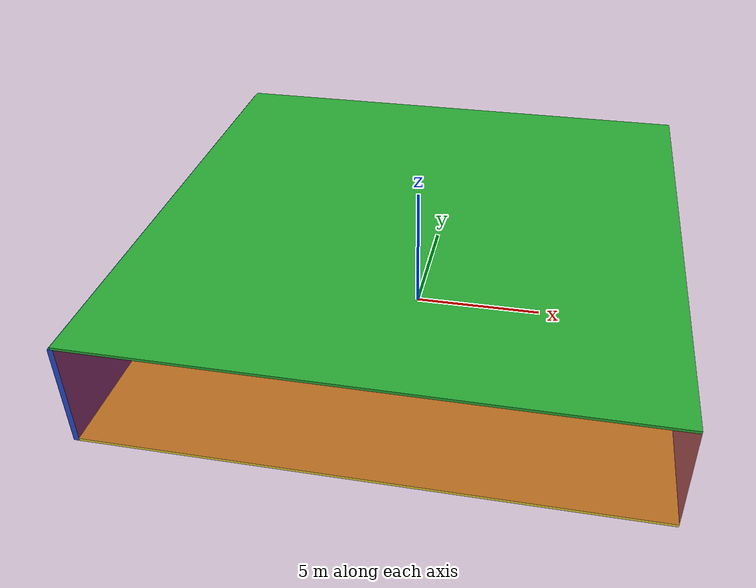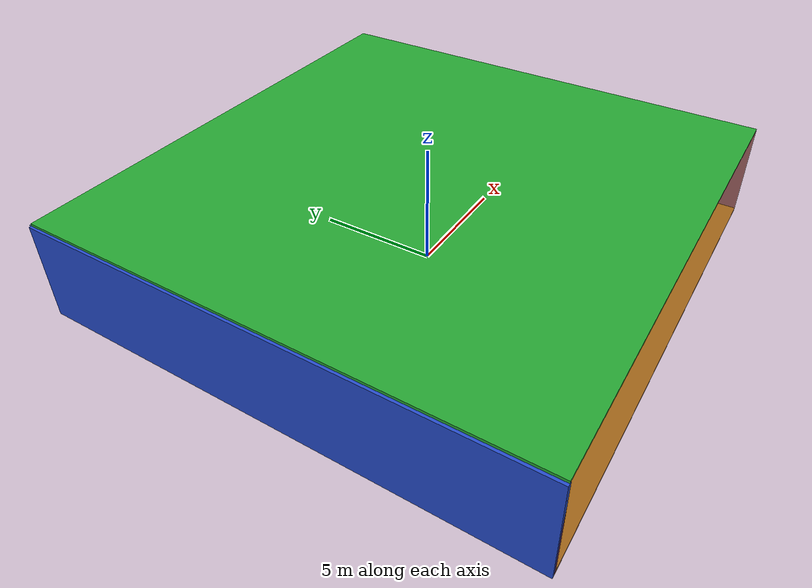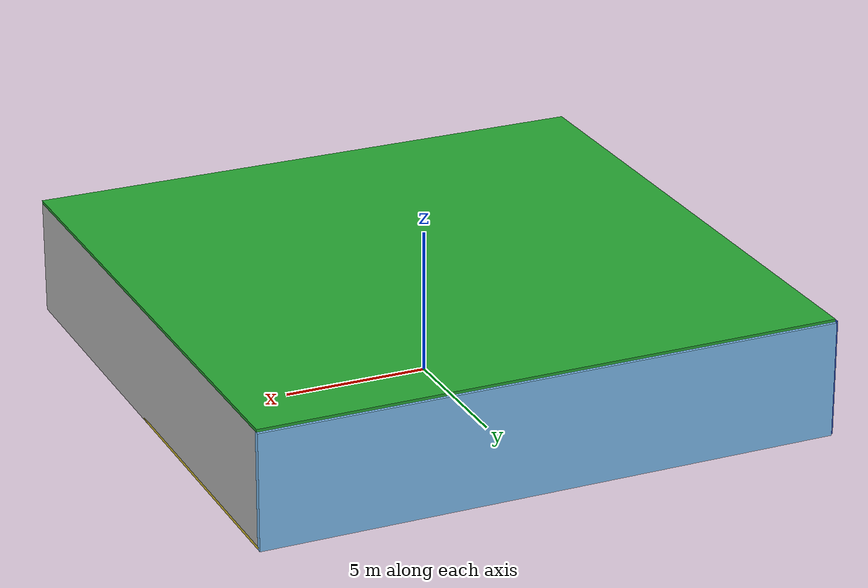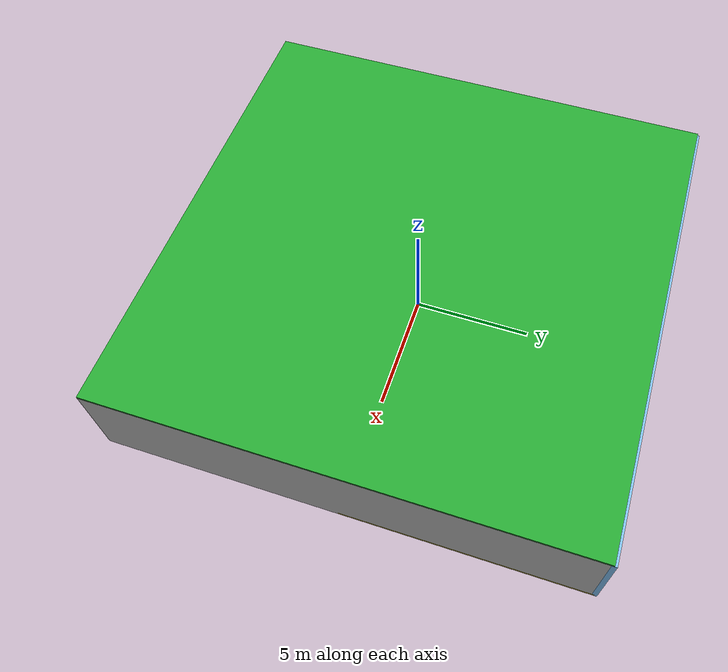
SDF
<sdf version="1.4">
 <world name="default">
  <physics type="ode">
   <max_step_size>0.001</max_step_size>
   <real_time_factor>1</real_time_factor>
   <real_time_update_rate>1000</real_time_update_rate>
   <gravity>0 0 -9.8</gravity>
  </physics>
  <scene><ambient>0.4 0.4 0.4 1</ambient><background>0.7 0.7 0.7 1</background><shadows>1</shadows></scene>
  <model name="Surrounding">
   <static>1</static>
   <link name="Ceiling">
    <collision name="Ceiling_Collision"><geometry><box><size>20 20 0.1</size></box></geometry></collision>
    <visual name="Ceiling_Visual">
     <geometry><box><size>20 20 0.1</size></box></geometry>
     <material>
      <script><uri>file://media/materials/scripts/gazebo.material</uri><name>Gazebo/GreenGlow</name></script>
     </material>
    </visual>
    <pose>0 0 4.05 0 0 0</pose>
   </link>
   <link name="Wall_South">
    <collision name="Wall_South_Collision">
     <geometry><box><size>20 0 4</size></box></geometry>
     <pose>0 0 2 0 -0 0</pose>
    </collision>
    <visual name="Wall_South_Visual">
     <pose>0 0 2 0 -0 0</pose>
     <geometry><box><size>20 0 4</size></box></geometry>
     <material>
      <script><uri>file://media/materials/scripts/gazebo.material</uri><name>Gazebo/RedTransparent</name></script>
     </material>
    </visual>
    <velocity_decay><linear>0</linear><angular>0</angular></velocity_decay>
    <pose>0 -10 0 0 -0 0</pose>
   </link>
   <link name="Wall_East">
    <collision name="Wall_21_Collision">
     <geometry><box><size>20 0 4</size></box></geometry>
     <pose>0 0 2 0 -0 0</pose>
    </collision>
    <visual name="Wall_21_Visual">
     <pose>0 0 2 0 -0 0</pose>
     <geometry><box><size>20 0 4</size></box></geometry>
     <material>
      <script><uri>file://media/materials/scripts/gazebo.material</uri><name>Gazebo/LightOff</name></script>
     </material>
    </visual>
    <velocity_decay><linear>0</linear><angular>0</angular></velocity_decay>
    <pose>10 0 0 0 -0 1.5708</pose>
   </link>
   <link name="Wall_North">
    <collision name="Wall_22_Collision">
     <geometry><box><size>20 0.2 4</size></box></geometry>
     <pose>0 0 2 0 -0 0</pose>
    </collision>
    <visual name="Wall_22_Visual">
     <pose>0 0 2 0 -0 0</pose>
     <geometry><box><size>20 0.2 4</size></box></geometry>
     <material>
      <script><uri>file://media/materials/scripts/gazebo.material</uri><name>Gazebo/SkyBlue</name></script>
     </material>
    </visual>
    <velocity_decay><linear>0</linear><angular>0</angular></velocity_decay>
    <pose>0 10 0 0 -0 0</pose>
   </link>
   <link name="Wall_West">
    <collision name="Wall_23_Collision">
     <geometry><box><size>20 0.2 4</size></box></geometry>
     <pose>0 0 2 0 -0 0</pose>
    </collision>
    <visual name="Wall_23_Visual">
     <pose>0 0 2 0 -0 0</pose>
     <geometry><box><size>20 0.2 4</size></box></geometry>
     <material>
      <script><uri>file://media/materials/scripts/gazebo.material</uri><name>Gazebo/Blue</name></script>
     </material>
    </visual>
    <velocity_decay><linear>0</linear><angular>0</angular></velocity_decay>
    <pose>-10 0 0 0 0 -1.5708</pose>
   </link>
   <link name="Ground_link">
    <collision name="collision">
     <pose>0 0 .05 0 -0 0</pose>
     <geometry><box><size>20 20 0.1</size></box></geometry>
    </collision>
    <visual name="visual">
     <pose>0 0 .05 0 -0 0</pose>
     <geometry><box><size>20 20 0.1</size></box></geometry>
     <material>
      <script><uri>file://media/materials/scripts/gazebo.material</uri><name>Gazebo/ZincYellow</name></script>
     </material>
    </visual>
   </link>
   <static>1</static>
  </model>
  <spherical_coordinates>
   <surface_model>EARTH_WGS84</surface_model>
   <latitude_deg>0</latitude_deg>
   <longitude_deg>0</longitude_deg>
   <elevation>0</elevation>
   <heading_deg>0</heading_deg>
  </spherical_coordinates>
  <light name="lightball_0" type="diffuse">
   <diffuse>0.8 0.8 0.8 1</diffuse>
   <specular>0.2 0.2 0.2 1</specular>
   <attenuation>
    <range>100</range>
    <constant>0.7</constant>
    <linear>0.01</linear>
    <quadratic>0.001</quadratic>
   </attenuation>
   <direction>-0.5 0.1 -0.9</direction>
   <pose>5.31087219496 -0.990916376692 1.9544703915 0 0 0</pose>
  </light>
  <light name="lightball_1" type="diffuse">
   <diffuse>0.8 0.8 0.8 1</diffuse>
   <specular>0.2 0.2 0.2 1</specular>
   <attenuation>
    <range>100</range>
    <constant>0.7</constant>
    <linear>0.01</linear>
    <quadratic>0.001</quadratic>
   </attenuation>
   <direction>-0.5 0.1 -0.9</direction>
   <pose>3.71402301183 6.0719790498 3.03190631477 0 0 0</pose>
  </light>
  <light name="lightball_2" type="diffuse">
   <diffuse>0.8 0.8 0.8 1</diffuse>
   <specular>0.2 0.2 0.2 1</specular>
   <attenuation>
    <range>100</range>
    <constant>0.7</constant>
    <linear>0.01</linear>
    <quadratic>0.001</quadratic>
   </attenuation>
   <direction>-0.5 0.1 -0.9</direction>
   <pose>1.56249834635 8.0491177733 2.19287481496 0 0 0</pose>
  </light>
  <light name="lightball_3" type="diffuse">
   <diffuse>0.8 0.8 0.8 1</diffuse>
   <specular>0.2 0.2 0.2 1</specular>
   <attenuation>
    <range>100</range>
    <constant>0.7</constant>
    <linear>0.01</linear>
    <quadratic>0.001</quadratic>
   </attenuation>
   <direction>-0.5 0.1 -0.9</direction>
   <pose>-5.48925103595 8.93093814234 3.39267901035 0 0 0</pose>
  </light>
  <light name="lightball_4" type="diffuse">
   <diffuse>0.8 0.8 0.8 1</diffuse>
   <specular>0.2 0.2 0.2 1</specular>
   <attenuation>
    <range>100</range>
    <constant>0.7</constant>
    <linear>0.01</linear>
    <quadratic>0.001</quadratic>
   </attenuation>
   <direction>-0.5 0.1 -0.9</direction>
   <pose>9.35065379927 7.45161642582 1.85946841942 0 0 0</pose>
  </light>
  <light name="lightball_5" type="diffuse">
   <diffuse>0.8 0.8 0.8 1</diffuse>
   <specular>0.2 0.2 0.2 1</specular>
   <attenuation>
    <range>100</range>
    <constant>0.7</constant>
    <linear>0.01</linear>
    <quadratic>0.001</quadratic>
   </attenuation>
   <direction>-0.5 0.1 -0.9</direction>
   <pose>2.53712638218 -9.56529750757 1.38007217298 0 0 0</pose>
  </light>
  <light name="lightball_6" type="diffuse">
   <diffuse>0.8 0.8 0.8 1</diffuse>
   <specular>0.2 0.2 0.2 1</specular>
   <attenuation>
    <range>100</range>
    <constant>0.7</constant>
    <linear>0.01</linear>
    <quadratic>0.001</quadratic>
   </attenuation>
   <direction>-0.5 0.1 -0.9</direction>
   <pose>-1.4687292205 5.24622908899 1.2646928717 0 0 0</pose>
  </light>
  <light name="lightball_7" type="diffuse">
   <diffuse>0.8 0.8 0.8 1</diffuse>
   <specular>0.2 0.2 0.2 1</specular>
   <attenuation>
    <range>100</range>
    <constant>0.7</constant>
    <linear>0.01</linear>
    <quadratic>0.001</quadratic>
   </attenuation>
   <direction>-0.5 0.1 -0.9</direction>
   <pose>-2.28644059005 -2.98145912348 2.99993758117 0 0 0</pose>
  </light>
  <light name="lightball_8" type="diffuse">
   <diffuse>0.8 0.8 0.8 1</diffuse>
   <specular>0.2 0.2 0.2 1</specular>
   <attenuation>
    <range>100</range>
    <constant>0.7</constant>
    <linear>0.01</linear>
    <quadratic>0.001</quadratic>
   </attenuation>
   <direction>-0.5 0.1 -0.9</direction>
   <pose>-6.07839844348 9.30986024616 3.0187297617 0 0 0</pose>
  </light>
  <light name="lightball_9" type="diffuse">
   <diffuse>0.8 0.8 0.8 1</diffuse>
   <specular>0.2 0.2 0.2 1</specular>
   <attenuation>
    <range>100</range>
    <constant>0.7</constant>
    <linear>0.01</linear>
    <quadratic>0.001</quadratic>
   </attenuation>
   <direction>-0.5 0.1 -0.9</direction>
   <pose>-5.87429230993 7.99884978054 1.73827564808 0 0 0</pose>
  </light>
  <light name="lightball_10" type="diffuse">
   <diffuse>0.8 0.8 0.8 1</diffuse>
   <specular>0.2 0.2 0.2 1</specular>
   <attenuation>
    <range>100</range>
    <constant>0.7</constant>
    <linear>0.01</linear>
    <quadratic>0.001</quadratic>
   </attenuation>
   <direction>-0.5 0.1 -0.9</direction>
   <pose>-1.90604148512 -7.65191017708 2.32868876456 0 0 0</pose>
  </light>
  <light name="lightball_11" type="diffuse">
   <diffuse>0.8 0.8 0.8 1</diffuse>
   <specular>0.2 0.2 0.2 1</specular>
   <attenuation>
    <range>100</range>
    <constant>0.7</constant>
    <linear>0.01</linear>
    <quadratic>0.001</quadratic>
   </attenuation>
   <direction>-0.5 0.1 -0.9</direction>
   <pose>-2.22340195986 1.01875110373 1.6022069688 0 0 0</pose>
  </light>
  <light name="lightball_12" type="diffuse">
   <diffuse>0.8 0.8 0.8 1</diffuse>
   <specular>0.2 0.2 0.2 1</specular>
   <attenuation>
    <range>100</range>
    <constant>0.7</constant>
    <linear>0.01</linear>
    <quadratic>0.001</quadratic>
   </attenuation>
   <direction>-0.5 0.1 -0.9</direction>
   <pose>-0.784698641128 3.37294562992 1.6460392871 0 0 0</pose>
  </light>
  <light name="lightball_13" type="diffuse">
   <diffuse>0.8 0.8 0.8 1</diffuse>
   <specular>0.2 0.2 0.2 1</specular>
   <attenuation>
    <range>100</range>
    <constant>0.7</constant>
    <linear>0.01</linear>
    <quadratic>0.001</quadratic>
   </attenuation>
   <direction>-0.5 0.1 -0.9</direction>
   <pose>-6.95697760144 6.91498808334 3.10631409152 0 0 0</pose>
  </light>
  <include>
   <uri>model://textured_shapes</uri>
   <pose>2.03660475523 -4.00424461238 0 0 0 0.9506874856</pose>
  </include>
  <include><uri>model://table</uri><pose>1.07897504834 0.915883429063 0 0 0 2.99029739615</pose></include>
  <include>
   <uri>model://textured_shapes</uri>
   <pose>2.00206089918 5.00119747996 0 0 0 1.23785345932</pose>
  </include>
  <include><uri>model://cabinet</uri><pose>0.726090927962 8.5467932965 0 0 0 0.931942314486</pose></include>
  <include>
   <uri>model://construction_cone</uri>
   <pose>5.5161455119 1.72349138699 0 0 0 0.140762316995</pose>
  </include>
  <include><uri>model://cabinet</uri><pose>8.05457020537 -5.64800084884 0 0 0 1.48733462791</pose></include>
  <include>
   <uri>model://construction_cone</uri>
   <pose>8.6831695979 8.2766696086 0 0 0 3.12278226721</pose>
  </include>
 </world>
</sdf>

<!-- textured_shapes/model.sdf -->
<sdf version="1.6">
  <model name="textured_shapes">
    <pose>0 0 0.5 0 0 0</pose>
    <link name="box">
      <pose>0 -1.5 0 0 0 0</pose>
      <collision name="collision">
        <geometry>
          <box>
            <size>1 1 1</size>
          </box>
        </geometry>
      </collision>
      <visual name="visual">
        <geometry>
          <box>
            <size>1 1 1</size>
          </box>
        </geometry>
        <material>
          <script>
            <uri>model://../model_source/models/textured_shapes/materials/scripts</uri>
            <uri>model://../model_source/models/textured_shapes/materials/textures</uri>
            <name>TexturedShape/Squares</name>
          </script>
        </material>
      </visual>
    </link>
    <link name="sphere">
      <collision name="collision">
        <geometry>
          <sphere>
            <radius>0.5</radius>
          </sphere>
        </geometry>
      </collision>
      <visual name="visual">
        <geometry>
          <sphere>
            <radius>0.5</radius>
          </sphere>
        </geometry>
        <material>
          <script>
            <uri>model://../model_source/models/textured_shapes/materials/scripts</uri>
            <uri>model://../model_source/models/textured_shapes/materials/textures</uri>
            <name>TexturedShape/Squares</name>
          </script>
        </material>
      </visual>
    </link>
    <link name="cylinder">
      <pose>0 1.5 0 0 0 0</pose>
      <collision name="collision">
        <geometry>
          <cylinder>
            <radius>0.5</radius>
            <length>1</length>
          </cylinder>
        </geometry>
      </collision>
      <visual name="visual">
        <geometry>
          <cylinder>
            <radius>0.5</radius>
            <length>1</length>
          </cylinder>
        </geometry>
        <material>
          <script>
            <uri>model://../model_source/models/textured_shapes/materials/scripts</uri>
            <uri>model://../model_source/models/textured_shapes/materials/textures</uri>
            <name>TexturedShape/Squares</name>
          </script>
        </material>
      </visual>
    </link>
  </model>
</sdf>

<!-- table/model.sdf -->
<sdf version="1.5">
  <model name="table">
    <static>true</static>
    <link name="link">
      <collision name="surface">
        <pose>0 0 1.0 0 0 0</pose>
        <geometry>
          <box>
            <size>1.5 0.8 0.03</size>
          </box>
        </geometry>
        <surface>
          <friction>
            <ode>
              <mu>0.6</mu>
              <mu2>0.6</mu2>
            </ode>
          </friction>
        </surface>
      </collision>
      <visual name="visual1">
        <pose>0 0 1.0 0 0 0</pose>
        <geometry>
          <box>
            <size>1.5 0.8 0.03</size>
          </box>
        </geometry>
        <material>
          <script>
            <uri>model://media/materials/scripts/gazebo.material</uri>
            <name>Gazebo/Wood</name>
          </script>
        </material>
      </visual>
      <collision name="front_left_leg">
        <pose>0.68 0.38 0.5 0 0 0</pose>
        <geometry>
          <cylinder>
            <radius>0.02</radius>
            <length>1.0</length>
          </cylinder>
        </geometry>
      </collision>
      <visual name="front_left_leg">
        <pose>0.68 0.38 0.5 0 0 0</pose>
        <geometry>
          <cylinder>
            <radius>0.02</radius>
            <length>1.0</length>
          </cylinder>
        </geometry>
        <material>
          <script>
            <uri>model://media/materials/scripts/gazebo.material</uri>
            <name>Gazebo/Grey</name>
          </script>
        </material>
      </visual>
      <collision name="front_right_leg">
        <pose>0.68 -0.38 0.5 0 0 0</pose>
        <geometry>
          <cylinder>
            <radius>0.02</radius>
            <length>1.0</length>
          </cylinder>
        </geometry>
      </collision>
      <visual name="front_right_leg">
        <pose>0.68 -0.38 0.5 0 0 0</pose>
        <geometry>
          <cylinder>
            <radius>0.02</radius>
            <length>1.0</length>
          </cylinder>
        </geometry>
        <material>
          <script>
            <uri>model://media/materials/scripts/gazebo.material</uri>
            <name>Gazebo/Grey</name>
          </script>
        </material>
      </visual>
      <collision name="back_right_leg">
        <pose>-0.68 -0.38 0.5 0 0 0</pose>
        <geometry>
          <cylinder>
            <radius>0.02</radius>
            <length>1.0</length>
          </cylinder>
        </geometry>
      </collision>
      <visual name="back_right_leg">
        <pose>-0.68 -0.38 0.5 0 0 0</pose>
        <geometry>
          <cylinder>
            <radius>0.02</radius>
            <length>1.0</length>
          </cylinder>
        </geometry>
        <material>
          <script>
            <uri>model://media/materials/scripts/gazebo.material</uri>
            <name>Gazebo/Grey</name>
          </script>
        </material>
      </visual>
      <collision name="back_left_leg">
        <pose>-0.68 0.38 0.5 0 0 0</pose>
        <geometry>
          <cylinder>
            <radius>0.02</radius>
            <length>1.0</length>
          </cylinder>
        </geometry>
      </collision>
      <visual name="back_left_leg">
        <pose>-0.68 0.38 0.5 0 0 0</pose>
        <geometry>
          <cylinder>
            <radius>0.02</radius>
            <length>1.0</length>
          </cylinder>
        </geometry>
        <material>
          <script>
            <uri>model://media/materials/scripts/gazebo.material</uri>
            <name>Gazebo/Grey</name>
          </script>
        </material>
      </visual>
    </link>
  </model>
</sdf>

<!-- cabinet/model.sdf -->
<sdf version="1.5">
  <model name="cabinet">
    <static>true</static>
    <link name="cabinet_bottom_plate">
      <inertial>
        <pose>0 0 -1 0 0 0</pose>
        <inertia>
          <ixx>2.050000</ixx>
          <ixy>0</ixy>
          <ixz>0</ixz>
          <iyy>2.050000</iyy>
          <iyz>0</iyz>
          <izz>2.050000</izz>
        </inertia>
        <mass>25.000000</mass>
      </inertial>
      <collision name="cabinet_bottom_plate_geom">
        <pose>0 0 0.010000 0 0 0</pose>
        <geometry>
          <box>
            <size>0.450000 0.450000 0.020000</size>
          </box>
        </geometry>
      </collision>
      <visual name="cabinet_bottom_plate_geom_visual">
        <pose>0 0 0.010000 0 0 0</pose>
        <geometry>
          <box>
            <size>0.450000 0.450000 0.020000</size>
          </box>
        </geometry>
        <material>
          <script>
            <uri>model://media/materials/scripts/gazebo.material</uri>
            <name>Gazebo/Wood</name>
          </script>
        </material>
      </visual>
      <collision name="cabinet_bottom_plate_geom_cabinet_back_plate">
        <pose>0.235000 0 0.510000 0 0 0</pose>
        <geometry>
          <box>
            <size>0.020000 0.450000 1.020000</size>
          </box>
        </geometry>
      </collision>
      <visual name="cabinet_bottom_plate_geom_cabinet_back_plate_visual">
        <pose>0.235000 0 0.510000 0 0 0</pose>
        <geometry>
          <box>
            <size>0.020000 0.450000 1.020000</size>
          </box>
        </geometry>
        <material>
          <script>
            <uri>model://media/materials/scripts/gazebo.material</uri>
            <name>Gazebo/Wood</name>
          </script>
        </material>
      </visual>
      <collision name="cabinet_bottom_plate_geom_cabinet_left_plate">
        <pose>0 0.235000 0.510000 0 0 0</pose>
        <geometry>
          <box>
            <size>0.450000 0.020000 1.020000</size>
          </box>
        </geometry>
      </collision>
      <visual name="cabinet_bottom_plate_geom_cabinet_left_plate_visual">
        <pose>0 0.235000 0.510000 0 0 0</pose>
        <geometry>
          <box>
            <size>0.450000 0.020000 1.020000</size>
          </box>
        </geometry>
        <material>
          <script>
            <uri>model://media/materials/scripts/gazebo.material</uri>
            <name>Gazebo/Wood</name>
          </script>
        </material>
      </visual>
      <collision name="cabinet_bottom_plate_geom_cabinet_middle_plate">
        <pose>0 0 0.510000 0 0 0</pose>
        <geometry>
          <box>
            <size>0.450000 0.450000 0.020000</size>
          </box>
        </geometry>
      </collision>
      <visual name="cabinet_bottom_plate_geom_cabinet_middle_plate_visual">
        <pose>0 0 0.510000 0 0 0</pose>
        <geometry>
          <box>
            <size>0.450000 0.450000 0.020000</size>
          </box>
        </geometry>
        <material>
          <script>
            <uri>model://media/materials/scripts/gazebo.material</uri>
            <name>Gazebo/Wood</name>
          </script>
        </material>
      </visual>
      <collision name="cabinet_bottom_plate_geom_cabinet_right_plate">
        <pose>0 -0.235000 0.510000 0 0 0</pose>
        <geometry>
          <box>
            <size>0.450000 0.020000 1.020000</size>
          </box>
        </geometry>
      </collision>
      <visual name="cabinet_bottom_plate_geom_cabinet_right_plate_visual">
        <pose>0 -0.235000 0.510000 0 0 0</pose>
        <geometry>
          <box>
            <size>0.450000 0.020000 1.020000</size>
          </box>
        </geometry>
        <material>
          <script>
            <uri>model://media/materials/scripts/gazebo.material</uri>
            <name>Gazebo/Wood</name>
          </script>
        </material>
      </visual>
      <collision name="cabinet_bottom_plate_geom_cabinet_top_plate">
        <pose>0 0 1.010000 0 0 0</pose>
        <geometry>
          <box>
            <size>0.450000 0.450000 0.020000</size>
          </box>
        </geometry>
      </collision>
      <visual name="cabinet_bottom_plate_geom_cabinet_top_plate_visual">
        <pose>0 0 1.010000 0 0 0</pose>
        <geometry>
          <box>
            <size>0.450000 0.450000 0.020000</size>
          </box>
        </geometry>
        <material>
          <script>
            <uri>model://media/materials/scripts/gazebo.material</uri>
            <name>Gazebo/Wood</name>
          </script>
        </material>
      </visual>
    </link>
  </model>
</sdf>

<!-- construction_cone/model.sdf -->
<sdf version="1.5">
  <model name="Construction Cone">
    <link name="link">
      <collision name="collision">
        <geometry>
          <mesh>
            <scale>10 10 10</scale>
            <uri>file://isr-testbed/construction_cone/meshes/construction_cone.dae</uri>
          </mesh>
        </geometry>
      </collision>
      <visual name="visual">
        <geometry>
          <mesh>
            <scale>10 10 10</scale>
            <uri>file://isr-testbed/construction_cone/meshes/construction_cone.dae</uri>
          </mesh>
        </geometry>
      </visual>
    </link>
  </model>
</sdf>
